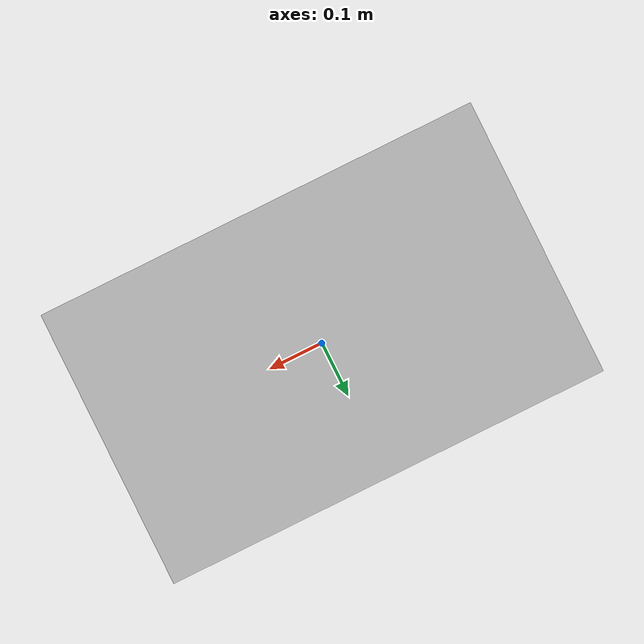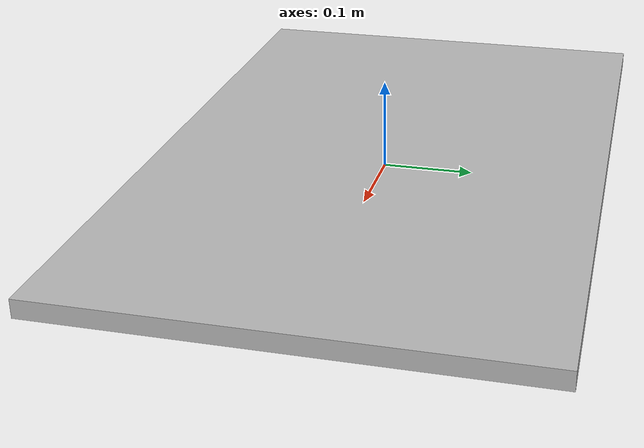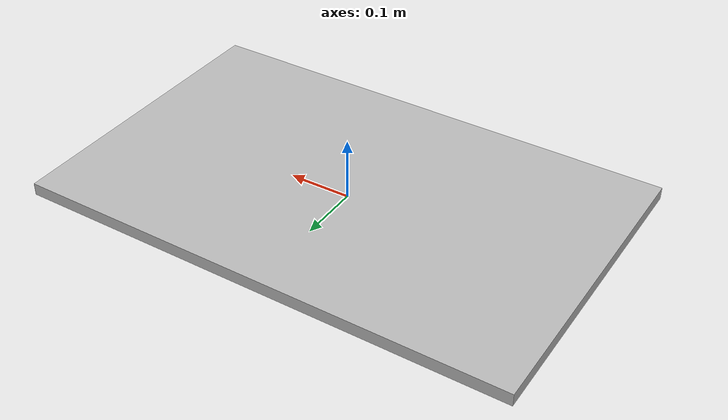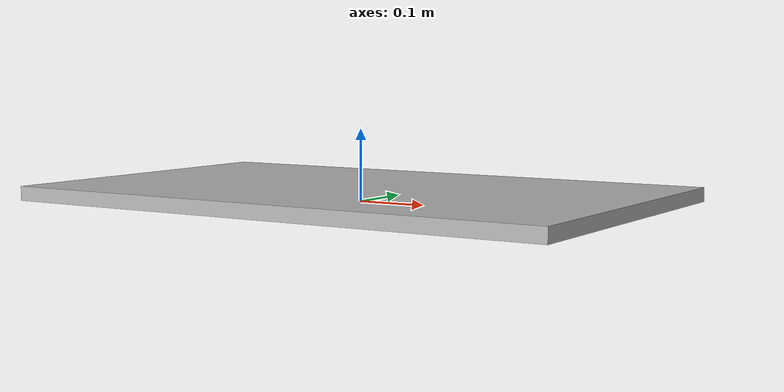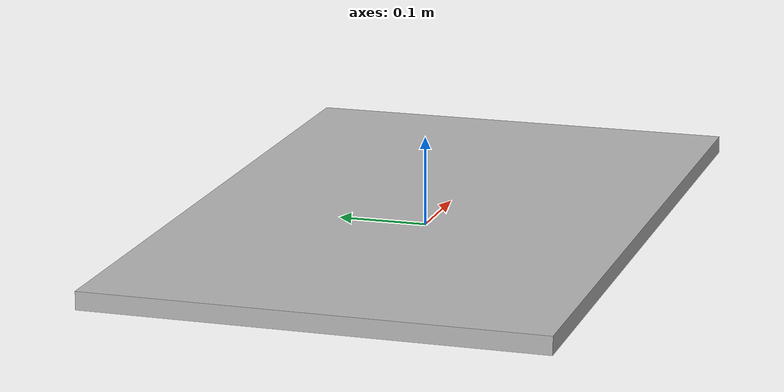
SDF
<?xml version='1.0'?>
<sdf version="1.6">
  <model name="checkerboard_5_8_0_1">
    <static>true</static>
    <link name="checkerboard_5_8_0_1">
      <inertial>
        <mass>0.0011</mass>
        <inertia>
          <ixx>3.96e-09</ixx>
          <ixy>0</ixy>
          <ixz>0</ixz>
          <iyy>3.96e-09</iyy>
          <iyz>0</iyz>
          <izz>3.96e-09</izz>
        </inertia>
      </inertial>
      <visual name="visual">
        <geometry>
          <mesh>
            <uri>model://checkerboard_5_8_0_1/meshes/checkerboard_5_8_0_1.dae</uri>
          </mesh>
        </geometry>
      </visual>
      <collision name="collision">
        <origin xyz="0 0 0" rpy="0 0 0" />
        <geometry>
          <mesh>
            <uri>model://checkerboard_5_8_0_1/meshes/checkerboard_5_8_0_1.dae</uri>
          </mesh>
        </geometry>
      </collision>
    </link>
  </model>
</sdf>
